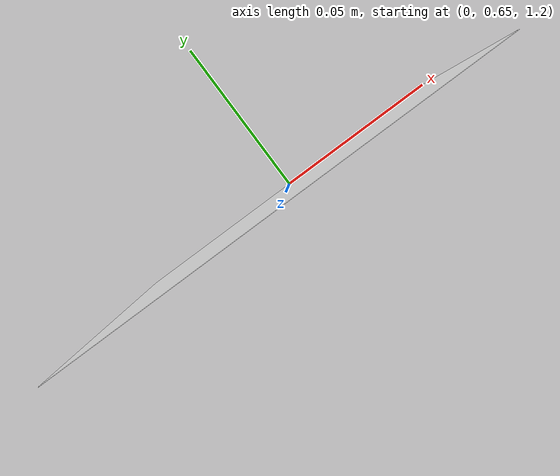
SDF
<?xml version="1.0" ?>

<sdf version="1.6">
  <world name="pole_marker_world">

    <!-- Set the coordinates for the world origin -->
    <spherical_coordinates>
      <surface_model>EARTH_WGS84</surface_model>
      <world_frame_orientation>ENU</world_frame_orientation>
      <latitude_deg>52.2184</latitude_deg>
      <longitude_deg>6.8753</longitude_deg>
      <elevation>0</elevation>
      <heading_deg>0</heading_deg>
    </spherical_coordinates>

    <physics name="1ms" type="ignored">
      <max_step_size>0.001</max_step_size>
      <real_time_factor>1.0</real_time_factor>
    </physics>
    <plugin
      filename="ignition-gazebo-physics-system"
      name="ignition::gazebo::systems::Physics">
    </plugin>
    <plugin
      filename="ignition-gazebo-user-commands-system"
      name="ignition::gazebo::systems::UserCommands">
    </plugin>
    <plugin
      filename="ignition-gazebo-scene-broadcaster-system"
      name="ignition::gazebo::systems::SceneBroadcaster">
    </plugin>
    <plugin
      filename="ignition-gazebo-contact-system"
      name="ignition::gazebo::systems::Contact">
    </plugin>

    <light type="directional" name="sun">
      <cast_shadows>true</cast_shadows>
      <pose>0 0 10 0 0 0</pose>
      <diffuse>0.8 0.8 0.8 1</diffuse>
      <specular>0.2 0.2 0.2 1</specular>
      <attenuation>
        <range>1000</range>
        <constant>0.9</constant>
        <linear>0.01</linear>
        <quadratic>0.001</quadratic>
      </attenuation>
      <direction>-0.5 0.1 -0.9</direction>
    </light>

    <!-- Ground plane -->
    <model name="ground_plane">
      <static>true</static>
      <link name="link">
        <collision name="collision">
          <geometry>
            <plane>
              <normal>0 0 1</normal>
              <size>100 100</size>
            </plane>
          </geometry>
        </collision>
        <visual name="visual">
          <geometry>
            <plane>
              <normal>0 0 1</normal>
              <size>100 100</size>
            </plane>
          </geometry>
          <material>
            <ambient>0.8 0.8 0.8 1</ambient>
            <diffuse>0.8 0.8 0.8 1</diffuse>
            <specular>0.8 0.8 0.8 1</specular>
          </material>
        </visual>
      </link>
    </model>

        <!-- Docking tag -->
    <model name="tag_plane">
      <static>true</static>
      <pose>0 0.65 1.25 0 0 1.5708</pose>
      <link name="tag_link">
        <visual name="tag_visual">
          <geometry>
            <plane>
              <normal>-1 0 0</normal>
              <size>0.1 0.1</size>
            </plane>
          </geometry>
          <material>
            <ambient>1 1 1 1</ambient>
            <diffuse>1 1 1 1</diffuse>
            <specular>0.8 0.8 1</specular>
            <pbr>
              <metal>
                <albedo_map>aruco-42.png</albedo_map>
                <normal_map>aruco-42.png</normal_map>
              </metal>
            </pbr>
          </material>
        </visual>
      </link>
    </model>

  </world>
</sdf>
